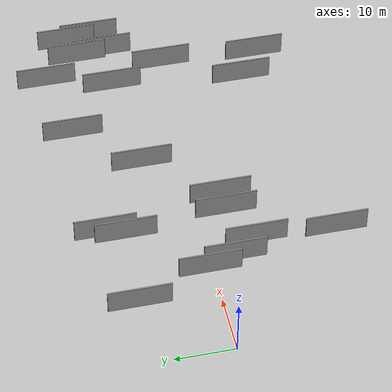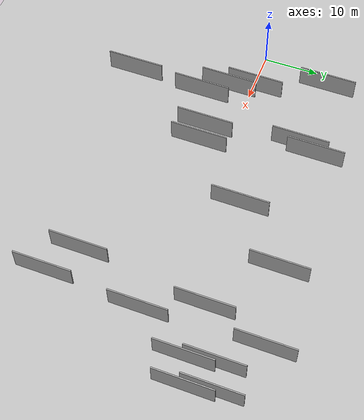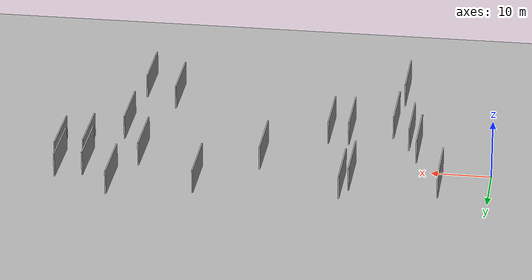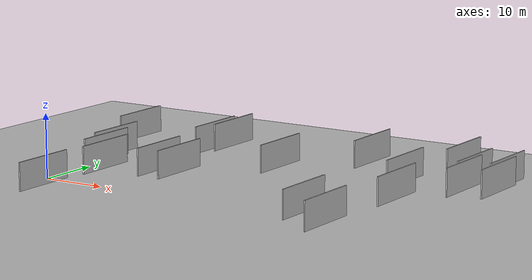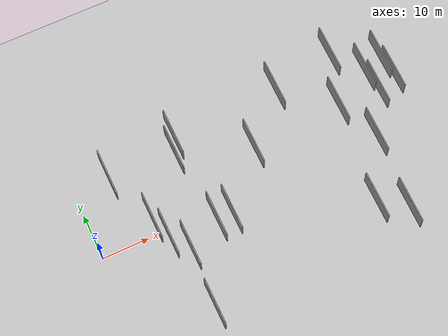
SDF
<?xml version="1.0" encoding="utf-8"?>

<sdf version="1.6">

   <world name="default">

      <gui fullscreen="0">

         <camera name="user_camera">

            <pose>-15 0 4.57585 0 0 0</pose>

            <view_controller>orbit</view_controller>

         </camera>

      </gui>

      <scene>

         <sky>

           <clouds>

             <speed>12</speed>

           </clouds>

         </sky>

         <ambient>0.4 0.4 0.4 1</ambient>

         <background>0.7 0.7 0.7 1</background>

         <shadows>1</shadows>

      </scene>

      <gravity>0 0 -9.8066</gravity>

      <magnetic_field>6e-06 2.3e-05 -4.2e-05</magnetic_field>

      <physics default="0" name="default_physics" type="ode">

         <ode>

            <solver>

               <type>quick</type>

               <iters>10</iters>

               <sor>1.0</sor>

               <use_dynamic_moi_rescaling>0</use_dynamic_moi_rescaling>

            </solver>

            <constraints>

               <cfm>0</cfm>

               <erp>0.2</erp>

               <contact_max_correcting_vel>100</contact_max_correcting_vel>

               <contact_surface_layer>0.001</contact_surface_layer>

            </constraints>

         </ode>

         <max_step_size>0.004</max_step_size>

         <real_time_factor>1</real_time_factor>

         <real_time_update_rate>250</real_time_update_rate>

      </physics>

      <light name="sun" type="directional">

         <cast_shadows>1</cast_shadows>

         <pose>0 0 10 0 0 0</pose>

         <diffuse>0.8 0.8 0.8 1</diffuse>

         <specular>0.2 0.2 0.2 1</specular>

         <attenuation>

            <range>1000</range>

            <constant>0.9</constant>

            <linear>0.01</linear>

            <quadratic>0.001</quadratic>

         </attenuation>

         <direction>-0.5 0.1 -0.9</direction>

      </light>

      <include>

         <name>ground_plane_1</name>

         <uri>model://HANNAS_ground_plane</uri>

         <pose>0 0 0  0 0 0</pose>

      </include>

      <include>

         <name>ground_plane_2</name>

         <uri>model://HANNAS_ground_plane</uri>

         <pose>100 0 0  0 0 0</pose>

      </include>

      <model name="HANNAS_wall_1">

         <static>1</static>

         <pose frame="">15.8258 -19.7976 5.0 0.000000 0.000000 1.570796</pose>

         <link name="link">

            <pose frame="">0 0 2.00 0 0 0</pose>

            <collision name="collision">

               <geometry>

                  <box>

                     <size>10.00 0.2 4.00</size>

                  </box>

               </geometry>

               <max_contacts>10</max_contacts>

               <surface>

                  <contact>

                     <ode/>

                  </contact>

                  <bounce/>

                  <friction>

                     <torsional>

                        <ode/>

                     </torsional>

                     <ode/>

                  </friction>

               </surface>

            </collision>

            <visual name="visual">

               <cast_shadows>0</cast_shadows>

               <geometry>

                  <box>

                     <size>10.00 0.2 4.00</size>

                  </box>

               </geometry>

               <material>

                  <script>

                     <uri>model://HANNAS_wall/materials/scripts</uri>

                     <uri>model://HANNAS_wall/materials/textures</uri>

                     <name>vrc/HANNAS_wall</name>

                  </script>

               </material>

            </visual>

            <self_collide>0</self_collide>

            <enable_wind>0</enable_wind>

            <kinematic>0</kinematic>

         </link>

      </model>

      <model name="HANNAS_wall_2">

         <static>1</static>

         <pose frame="">11.9177 1.4684 5.0 0.000000 0.000000 1.570796</pose>

         <link name="link">

            <pose frame="">0 0 2.00 0 0 0</pose>

            <collision name="collision">

               <geometry>

                  <box>

                     <size>10.00 0.2 4.00</size>

                  </box>

               </geometry>

               <max_contacts>10</max_contacts>

               <surface>

                  <contact>

                     <ode/>

                  </contact>

                  <bounce/>

                  <friction>

                     <torsional>

                        <ode/>

                     </torsional>

                     <ode/>

                  </friction>

               </surface>

            </collision>

            <visual name="visual">

               <cast_shadows>0</cast_shadows>

               <geometry>

                  <box>

                     <size>10.00 0.2 4.00</size>

                  </box>

               </geometry>

               <material>

                  <script>

                     <uri>model://HANNAS_wall/materials/scripts</uri>

                     <uri>model://HANNAS_wall/materials/textures</uri>

                     <name>vrc/HANNAS_wall</name>

                  </script>

               </material>

            </visual>

            <self_collide>0</self_collide>

            <enable_wind>0</enable_wind>

            <kinematic>0</kinematic>

         </link>

      </model>

      <model name="HANNAS_wall_3">

         <static>1</static>

         <pose frame="">13.5202 -2.8960 5.0 0.000000 0.000000 1.570796</pose>

         <link name="link">

            <pose frame="">0 0 2.00 0 0 0</pose>

            <collision name="collision">

               <geometry>

                  <box>

                     <size>10.00 0.2 4.00</size>

                  </box>

               </geometry>

               <max_contacts>10</max_contacts>

               <surface>

                  <contact>

                     <ode/>

                  </contact>

                  <bounce/>

                  <friction>

                     <torsional>

                        <ode/>

                     </torsional>

                     <ode/>

                  </friction>

               </surface>

            </collision>

            <visual name="visual">

               <cast_shadows>0</cast_shadows>

               <geometry>

                  <box>

                     <size>10.00 0.2 4.00</size>

                  </box>

               </geometry>

               <material>

                  <script>

                     <uri>model://HANNAS_wall/materials/scripts</uri>

                     <uri>model://HANNAS_wall/materials/textures</uri>

                     <name>vrc/HANNAS_wall</name>

                  </script>

               </material>

            </visual>

            <self_collide>0</self_collide>

            <enable_wind>0</enable_wind>

            <kinematic>0</kinematic>

         </link>

      </model>

      <model name="HANNAS_wall_4">

         <static>1</static>

         <pose frame="">64.7459 13.0781 5.0 0.000000 0.000000 1.570796</pose>

         <link name="link">

            <pose frame="">0 0 2.00 0 0 0</pose>

            <collision name="collision">

               <geometry>

                  <box>

                     <size>10.00 0.2 4.00</size>

                  </box>

               </geometry>

               <max_contacts>10</max_contacts>

               <surface>

                  <contact>

                     <ode/>

                  </contact>

                  <bounce/>

                  <friction>

                     <torsional>

                        <ode/>

                     </torsional>

                     <ode/>

                  </friction>

               </surface>

            </collision>

            <visual name="visual">

               <cast_shadows>0</cast_shadows>

               <geometry>

                  <box>

                     <size>10.00 0.2 4.00</size>

                  </box>

               </geometry>

               <material>

                  <script>

                     <uri>model://HANNAS_wall/materials/scripts</uri>

                     <uri>model://HANNAS_wall/materials/textures</uri>

                     <name>vrc/HANNAS_wall</name>

                  </script>

               </material>

            </visual>

            <self_collide>0</self_collide>

            <enable_wind>0</enable_wind>

            <kinematic>0</kinematic>

         </link>

      </model>

      <model name="HANNAS_wall_5">

         <static>1</static>

         <pose frame="">69.0698 14.2460 5.0 0.000000 0.000000 1.570796</pose>

         <link name="link">

            <pose frame="">0 0 2.00 0 0 0</pose>

            <collision name="collision">

               <geometry>

                  <box>

                     <size>10.00 0.2 4.00</size>

                  </box>

               </geometry>

               <max_contacts>10</max_contacts>

               <surface>

                  <contact>

                     <ode/>

                  </contact>

                  <bounce/>

                  <friction>

                     <torsional>

                        <ode/>

                     </torsional>

                     <ode/>

                  </friction>

               </surface>

            </collision>

            <visual name="visual">

               <cast_shadows>0</cast_shadows>

               <geometry>

                  <box>

                     <size>10.00 0.2 4.00</size>

                  </box>

               </geometry>

               <material>

                  <script>

                     <uri>model://HANNAS_wall/materials/scripts</uri>

                     <uri>model://HANNAS_wall/materials/textures</uri>

                     <name>vrc/HANNAS_wall</name>

                  </script>

               </material>

            </visual>

            <self_collide>0</self_collide>

            <enable_wind>0</enable_wind>

            <kinematic>0</kinematic>

         </link>

      </model>

      <model name="HANNAS_wall_6">

         <static>1</static>

         <pose frame="">16.4750 -6.9574 5.0 0.000000 0.000000 1.570796</pose>

         <link name="link">

            <pose frame="">0 0 2.00 0 0 0</pose>

            <collision name="collision">

               <geometry>

                  <box>

                     <size>10.00 0.2 4.00</size>

                  </box>

               </geometry>

               <max_contacts>10</max_contacts>

               <surface>

                  <contact>

                     <ode/>

                  </contact>

                  <bounce/>

                  <friction>

                     <torsional>

                        <ode/>

                     </torsional>

                     <ode/>

                  </friction>

               </surface>

            </collision>

            <visual name="visual">

               <cast_shadows>0</cast_shadows>

               <geometry>

                  <box>

                     <size>10.00 0.2 4.00</size>

                  </box>

               </geometry>

               <material>

                  <script>

                     <uri>model://HANNAS_wall/materials/scripts</uri>

                     <uri>model://HANNAS_wall/materials/textures</uri>

                     <name>vrc/HANNAS_wall</name>

                  </script>

               </material>

            </visual>

            <self_collide>0</self_collide>

            <enable_wind>0</enable_wind>

            <kinematic>0</kinematic>

         </link>

      </model>

      <model name="HANNAS_wall_7">

         <static>1</static>

         <pose frame="">59.4809 -17.3056 5.0 0.000000 0.000000 1.570796</pose>

         <link name="link">

            <pose frame="">0 0 2.00 0 0 0</pose>

            <collision name="collision">

               <geometry>

                  <box>

                     <size>10.00 0.2 4.00</size>

                  </box>

               </geometry>

               <max_contacts>10</max_contacts>

               <surface>

                  <contact>

                     <ode/>

                  </contact>

                  <bounce/>

                  <friction>

                     <torsional>

                        <ode/>

                     </torsional>

                     <ode/>

                  </friction>

               </surface>

            </collision>

            <visual name="visual">

               <cast_shadows>0</cast_shadows>

               <geometry>

                  <box>

                     <size>10.00 0.2 4.00</size>

                  </box>

               </geometry>

               <material>

                  <script>

                     <uri>model://HANNAS_wall/materials/scripts</uri>

                     <uri>model://HANNAS_wall/materials/textures</uri>

                     <name>vrc/HANNAS_wall</name>

                  </script>

               </material>

            </visual>

            <self_collide>0</self_collide>

            <enable_wind>0</enable_wind>

            <kinematic>0</kinematic>

         </link>

      </model>

      <model name="HANNAS_wall_8">

         <static>1</static>

         <pose frame="">56.4049 8.4495 5.0 0.000000 0.000000 1.570796</pose>

         <link name="link">

            <pose frame="">0 0 2.00 0 0 0</pose>

            <collision name="collision">

               <geometry>

                  <box>

                     <size>10.00 0.2 4.00</size>

                  </box>

               </geometry>

               <max_contacts>10</max_contacts>

               <surface>

                  <contact>

                     <ode/>

                  </contact>

                  <bounce/>

                  <friction>

                     <torsional>

                        <ode/>

                     </torsional>

                     <ode/>

                  </friction>

               </surface>

            </collision>

            <visual name="visual">

               <cast_shadows>0</cast_shadows>

               <geometry>

                  <box>

                     <size>10.00 0.2 4.00</size>

                  </box>

               </geometry>

               <material>

                  <script>

                     <uri>model://HANNAS_wall/materials/scripts</uri>

                     <uri>model://HANNAS_wall/materials/textures</uri>

                     <name>vrc/HANNAS_wall</name>

                  </script>

               </material>

            </visual>

            <self_collide>0</self_collide>

            <enable_wind>0</enable_wind>

            <kinematic>0</kinematic>

         </link>

      </model>

      <model name="HANNAS_wall_9">

         <static>1</static>

         <pose frame="">26.9093 -3.6095 5.0 0.000000 0.000000 1.570796</pose>

         <link name="link">

            <pose frame="">0 0 2.00 0 0 0</pose>

            <collision name="collision">

               <geometry>

                  <box>

                     <size>10.00 0.2 4.00</size>

                  </box>

               </geometry>

               <max_contacts>10</max_contacts>

               <surface>

                  <contact>

                     <ode/>

                  </contact>

                  <bounce/>

                  <friction>

                     <torsional>

                        <ode/>

                     </torsional>

                     <ode/>

                  </friction>

               </surface>

            </collision>

            <visual name="visual">

               <cast_shadows>0</cast_shadows>

               <geometry>

                  <box>

                     <size>10.00 0.2 4.00</size>

                  </box>

               </geometry>

               <material>

                  <script>

                     <uri>model://HANNAS_wall/materials/scripts</uri>

                     <uri>model://HANNAS_wall/materials/textures</uri>

                     <name>vrc/HANNAS_wall</name>

                  </script>

               </material>

            </visual>

            <self_collide>0</self_collide>

            <enable_wind>0</enable_wind>

            <kinematic>0</kinematic>

         </link>

      </model>

      <model name="HANNAS_wall_10">

         <static>1</static>

         <pose frame="">7.4243 13.4742 5.0 0.000000 0.000000 1.570796</pose>

         <link name="link">

            <pose frame="">0 0 2.00 0 0 0</pose>

            <collision name="collision">

               <geometry>

                  <box>

                     <size>10.00 0.2 4.00</size>

                  </box>

               </geometry>

               <max_contacts>10</max_contacts>

               <surface>

                  <contact>

                     <ode/>

                  </contact>

                  <bounce/>

                  <friction>

                     <torsional>

                        <ode/>

                     </torsional>

                     <ode/>

                  </friction>

               </surface>

            </collision>

            <visual name="visual">

               <cast_shadows>0</cast_shadows>

               <geometry>

                  <box>

                     <size>10.00 0.2 4.00</size>

                  </box>

               </geometry>

               <material>

                  <script>

                     <uri>model://HANNAS_wall/materials/scripts</uri>

                     <uri>model://HANNAS_wall/materials/textures</uri>

                     <name>vrc/HANNAS_wall</name>

                  </script>

               </material>

            </visual>

            <self_collide>0</self_collide>

            <enable_wind>0</enable_wind>

            <kinematic>0</kinematic>

         </link>

      </model>

      <model name="HANNAS_wall_11">

         <static>1</static>

         <pose frame="">22.8987 15.8759 5.0 0.000000 0.000000 1.570796</pose>

         <link name="link">

            <pose frame="">0 0 2.00 0 0 0</pose>

            <collision name="collision">

               <geometry>

                  <box>

                     <size>10.00 0.2 4.00</size>

                  </box>

               </geometry>

               <max_contacts>10</max_contacts>

               <surface>

                  <contact>

                     <ode/>

                  </contact>

                  <bounce/>

                  <friction>

                     <torsional>

                        <ode/>

                     </torsional>

                     <ode/>

                  </friction>

               </surface>

            </collision>

            <visual name="visual">

               <cast_shadows>0</cast_shadows>

               <geometry>

                  <box>

                     <size>10.00 0.2 4.00</size>

                  </box>

               </geometry>

               <material>

                  <script>

                     <uri>model://HANNAS_wall/materials/scripts</uri>

                     <uri>model://HANNAS_wall/materials/textures</uri>

                     <name>vrc/HANNAS_wall</name>

                  </script>

               </material>

            </visual>

            <self_collide>0</self_collide>

            <enable_wind>0</enable_wind>

            <kinematic>0</kinematic>

         </link>

      </model>

      <model name="HANNAS_wall_12">

         <static>1</static>

         <pose frame="">23.5354 -3.7378 5.0 0.000000 0.000000 1.570796</pose>

         <link name="link">

            <pose frame="">0 0 2.00 0 0 0</pose>

            <collision name="collision">

               <geometry>

                  <box>

                     <size>10.00 0.2 4.00</size>

                  </box>

               </geometry>

               <max_contacts>10</max_contacts>

               <surface>

                  <contact>

                     <ode/>

                  </contact>

                  <bounce/>

                  <friction>

                     <torsional>

                        <ode/>

                     </torsional>

                     <ode/>

                  </friction>

               </surface>

            </collision>

            <visual name="visual">

               <cast_shadows>0</cast_shadows>

               <geometry>

                  <box>

                     <size>10.00 0.2 4.00</size>

                  </box>

               </geometry>

               <material>

                  <script>

                     <uri>model://HANNAS_wall/materials/scripts</uri>

                     <uri>model://HANNAS_wall/materials/textures</uri>

                     <name>vrc/HANNAS_wall</name>

                  </script>

               </material>

            </visual>

            <self_collide>0</self_collide>

            <enable_wind>0</enable_wind>

            <kinematic>0</kinematic>

         </link>

      </model>

      <model name="HANNAS_wall_13">

         <static>1</static>

         <pose frame="">60.4025 -0.9328 5.0 0.000000 0.000000 1.570796</pose>

         <link name="link">

            <pose frame="">0 0 2.00 0 0 0</pose>

            <collision name="collision">

               <geometry>

                  <box>

                     <size>10.00 0.2 4.00</size>

                  </box>

               </geometry>

               <max_contacts>10</max_contacts>

               <surface>

                  <contact>

                     <ode/>

                  </contact>

                  <bounce/>

                  <friction>

                     <torsional>

                        <ode/>

                     </torsional>

                     <ode/>

                  </friction>

               </surface>

            </collision>

            <visual name="visual">

               <cast_shadows>0</cast_shadows>

               <geometry>

                  <box>

                     <size>10.00 0.2 4.00</size>

                  </box>

               </geometry>

               <material>

                  <script>

                     <uri>model://HANNAS_wall/materials/scripts</uri>

                     <uri>model://HANNAS_wall/materials/textures</uri>

                     <name>vrc/HANNAS_wall</name>

                  </script>

               </material>

            </visual>

            <self_collide>0</self_collide>

            <enable_wind>0</enable_wind>

            <kinematic>0</kinematic>

         </link>

      </model>

      <model name="HANNAS_wall_14">

         <static>1</static>

         <pose frame="">36.7609 7.2722 5.0 0.000000 0.000000 1.570796</pose>

         <link name="link">

            <pose frame="">0 0 2.00 0 0 0</pose>

            <collision name="collision">

               <geometry>

                  <box>

                     <size>10.00 0.2 4.00</size>

                  </box>

               </geometry>

               <max_contacts>10</max_contacts>

               <surface>

                  <contact>

                     <ode/>

                  </contact>

                  <bounce/>

                  <friction>

                     <torsional>

                        <ode/>

                     </torsional>

                     <ode/>

                  </friction>

               </surface>

            </collision>

            <visual name="visual">

               <cast_shadows>0</cast_shadows>

               <geometry>

                  <box>

                     <size>10.00 0.2 4.00</size>

                  </box>

               </geometry>

               <material>

                  <script>

                     <uri>model://HANNAS_wall/materials/scripts</uri>

                     <uri>model://HANNAS_wall/materials/textures</uri>

                     <name>vrc/HANNAS_wall</name>

                  </script>

               </material>

            </visual>

            <self_collide>0</self_collide>

            <enable_wind>0</enable_wind>

            <kinematic>0</kinematic>

         </link>

      </model>

      <model name="HANNAS_wall_15">

         <static>1</static>

         <pose frame="">21.6800 12.8251 5.0 0.000000 0.000000 1.570796</pose>

         <link name="link">

            <pose frame="">0 0 2.00 0 0 0</pose>

            <collision name="collision">

               <geometry>

                  <box>

                     <size>10.00 0.2 4.00</size>

                  </box>

               </geometry>

               <max_contacts>10</max_contacts>

               <surface>

                  <contact>

                     <ode/>

                  </contact>

                  <bounce/>

                  <friction>

                     <torsional>

                        <ode/>

                     </torsional>

                     <ode/>

                  </friction>

               </surface>

            </collision>

            <visual name="visual">

               <cast_shadows>0</cast_shadows>

               <geometry>

                  <box>

                     <size>10.00 0.2 4.00</size>

                  </box>

               </geometry>

               <material>

                  <script>

                     <uri>model://HANNAS_wall/materials/scripts</uri>

                     <uri>model://HANNAS_wall/materials/textures</uri>

                     <name>vrc/HANNAS_wall</name>

                  </script>

               </material>

            </visual>

            <self_collide>0</self_collide>

            <enable_wind>0</enable_wind>

            <kinematic>0</kinematic>

         </link>

      </model>

      <model name="HANNAS_wall_16">

         <static>1</static>

         <pose frame="">69.8592 10.0712 5.0 0.000000 0.000000 1.570796</pose>

         <link name="link">

            <pose frame="">0 0 2.00 0 0 0</pose>

            <collision name="collision">

               <geometry>

                  <box>

                     <size>10.00 0.2 4.00</size>

                  </box>

               </geometry>

               <max_contacts>10</max_contacts>

               <surface>

                  <contact>

                     <ode/>

                  </contact>

                  <bounce/>

                  <friction>

                     <torsional>

                        <ode/>

                     </torsional>

                     <ode/>

                  </friction>

               </surface>

            </collision>

            <visual name="visual">

               <cast_shadows>0</cast_shadows>

               <geometry>

                  <box>

                     <size>10.00 0.2 4.00</size>

                  </box>

               </geometry>

               <material>

                  <script>

                     <uri>model://HANNAS_wall/materials/scripts</uri>

                     <uri>model://HANNAS_wall/materials/textures</uri>

                     <name>vrc/HANNAS_wall</name>

                  </script>

               </material>

            </visual>

            <self_collide>0</self_collide>

            <enable_wind>0</enable_wind>

            <kinematic>0</kinematic>

         </link>

      </model>

      <model name="HANNAS_wall_17">

         <static>1</static>

         <pose frame="">65.4870 8.4819 5.0 0.000000 0.000000 1.570796</pose>

         <link name="link">

            <pose frame="">0 0 2.00 0 0 0</pose>

            <collision name="collision">

               <geometry>

                  <box>

                     <size>10.00 0.2 4.00</size>

                  </box>

               </geometry>

               <max_contacts>10</max_contacts>

               <surface>

                  <contact>

                     <ode/>

                  </contact>

                  <bounce/>

                  <friction>

                     <torsional>

                        <ode/>

                     </torsional>

                     <ode/>

                  </friction>

               </surface>

            </collision>

            <visual name="visual">

               <cast_shadows>0</cast_shadows>

               <geometry>

                  <box>

                     <size>10.00 0.2 4.00</size>

                  </box>

               </geometry>

               <material>

                  <script>

                     <uri>model://HANNAS_wall/materials/scripts</uri>

                     <uri>model://HANNAS_wall/materials/textures</uri>

                     <name>vrc/HANNAS_wall</name>

                  </script>

               </material>

            </visual>

            <self_collide>0</self_collide>

            <enable_wind>0</enable_wind>

            <kinematic>0</kinematic>

         </link>

      </model>

      <model name="HANNAS_wall_18">

         <static>1</static>

         <pose frame="">46.1425 17.0389 5.0 0.000000 0.000000 1.570796</pose>

         <link name="link">

            <pose frame="">0 0 2.00 0 0 0</pose>

            <collision name="collision">

               <geometry>

                  <box>

                     <size>10.00 0.2 4.00</size>

                  </box>

               </geometry>

               <max_contacts>10</max_contacts>

               <surface>

                  <contact>

                     <ode/>

                  </contact>

                  <bounce/>

                  <friction>

                     <torsional>

                        <ode/>

                     </torsional>

                     <ode/>

                  </friction>

               </surface>

            </collision>

            <visual name="visual">

               <cast_shadows>0</cast_shadows>

               <geometry>

                  <box>

                     <size>10.00 0.2 4.00</size>

                  </box>

               </geometry>

               <material>

                  <script>

                     <uri>model://HANNAS_wall/materials/scripts</uri>

                     <uri>model://HANNAS_wall/materials/textures</uri>

                     <name>vrc/HANNAS_wall</name>

                  </script>

               </material>

            </visual>

            <self_collide>0</self_collide>

            <enable_wind>0</enable_wind>

            <kinematic>0</kinematic>

         </link>

      </model>

      <model name="HANNAS_wall_19">

         <static>1</static>

         <pose frame="">53.9657 -13.6798 5.0 0.000000 0.000000 1.570796</pose>

         <link name="link">

            <pose frame="">0 0 2.00 0 0 0</pose>

            <collision name="collision">

               <geometry>

                  <box>

                     <size>10.00 0.2 4.00</size>

                  </box>

               </geometry>

               <max_contacts>10</max_contacts>

               <surface>

                  <contact>

                     <ode/>

                  </contact>

                  <bounce/>

                  <friction>

                     <torsional>

                        <ode/>

                     </torsional>

                     <ode/>

                  </friction>

               </surface>

            </collision>

            <visual name="visual">

               <cast_shadows>0</cast_shadows>

               <geometry>

                  <box>

                     <size>10.00 0.2 4.00</size>

                  </box>

               </geometry>

               <material>

                  <script>

                     <uri>model://HANNAS_wall/materials/scripts</uri>

                     <uri>model://HANNAS_wall/materials/textures</uri>

                     <name>vrc/HANNAS_wall</name>

                  </script>

               </material>

            </visual>

            <self_collide>0</self_collide>

            <enable_wind>0</enable_wind>

            <kinematic>0</kinematic>

         </link>

      </model>

      <model name="HANNAS_wall_20">

         <static>1</static>

         <pose frame="">59.7509 19.2541 5.0 0.000000 0.000000 1.570796</pose>

         <link name="link">

            <pose frame="">0 0 2.00 0 0 0</pose>

            <collision name="collision">

               <geometry>

                  <box>

                     <size>10.00 0.2 4.00</size>

                  </box>

               </geometry>

               <max_contacts>10</max_contacts>

               <surface>

                  <contact>

                     <ode/>

                  </contact>

                  <bounce/>

                  <friction>

                     <torsional>

                        <ode/>

                     </torsional>

                     <ode/>

                  </friction>

               </surface>

            </collision>

            <visual name="visual">

               <cast_shadows>0</cast_shadows>

               <geometry>

                  <box>

                     <size>10.00 0.2 4.00</size>

                  </box>

               </geometry>

               <material>

                  <script>

                     <uri>model://HANNAS_wall/materials/scripts</uri>

                     <uri>model://HANNAS_wall/materials/textures</uri>

                     <name>vrc/HANNAS_wall</name>

                  </script>

               </material>

            </visual>

            <self_collide>0</self_collide>

            <enable_wind>0</enable_wind>

            <kinematic>0</kinematic>

         </link>

      </model>

   </world>

</sdf>

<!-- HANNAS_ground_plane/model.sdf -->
<sdf version="1.4">
<model name="HANNAS_ground_plane">
  <static>true</static>
    <link name="link">
      <collision name="collision">
        <geometry>
          <plane>
            <normal>0 0 1</normal>
            <size>1000 1000</size>
          </plane>
        </geometry>
        <surface>
          <friction>
            <ode>
              <mu>100</mu>
              <mu2>50</mu2>
            </ode>
          </friction>
        </surface>
      </collision>
      <visual name="visual">
        <cast_shadows>false</cast_shadows>
        <geometry>
          <plane>
            <normal>0 0 1</normal>
            <size>1000 1000</size>
          </plane>
        </geometry>
        <material>
          <script>
            <uri>model://HANNAS_ground_plane/materials/scripts/HANNAS_ground_plane.material</uri>
	    <uri>model://HANNAS_ground_plane/materials/textures</uri>
            <name>HANNASGroundPlane/Image</name>
          </script>
        </material>
      </visual>
    </link>
  </model>
</sdf>
